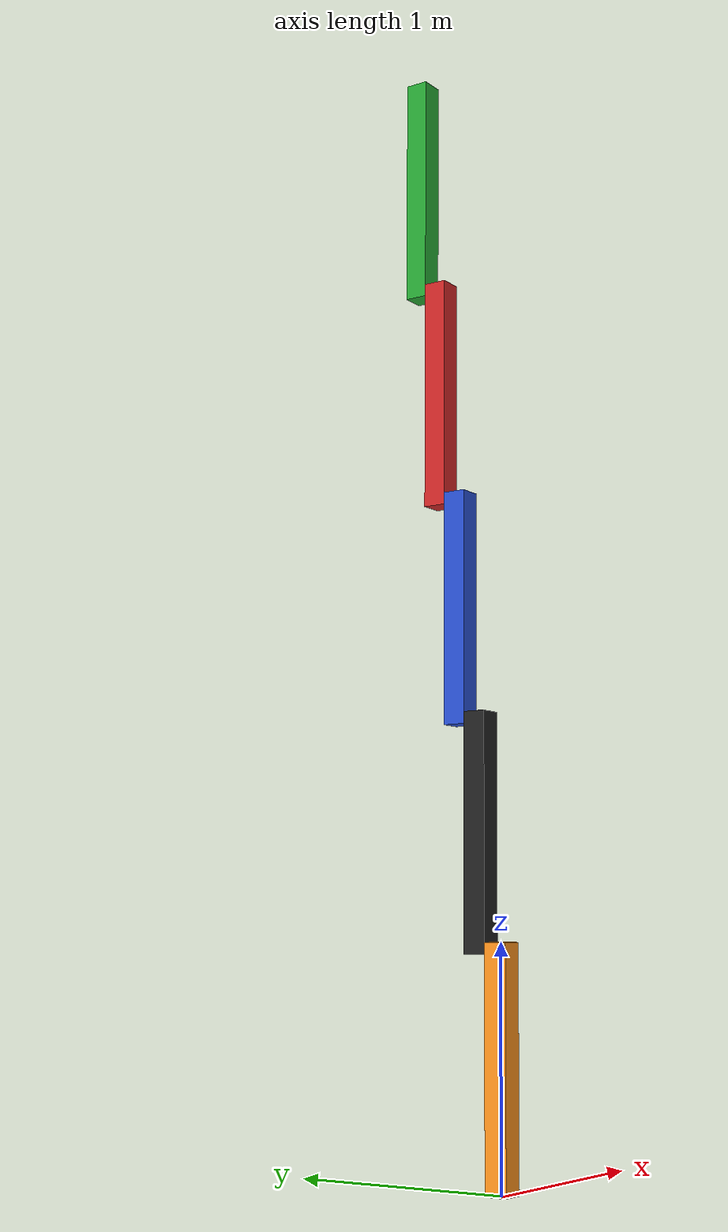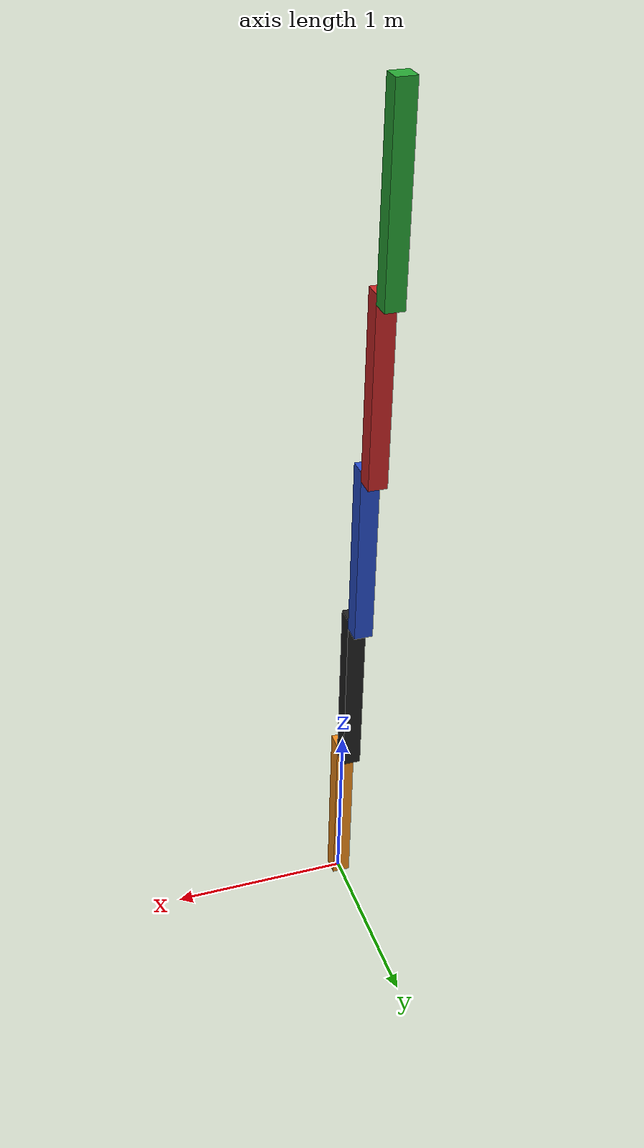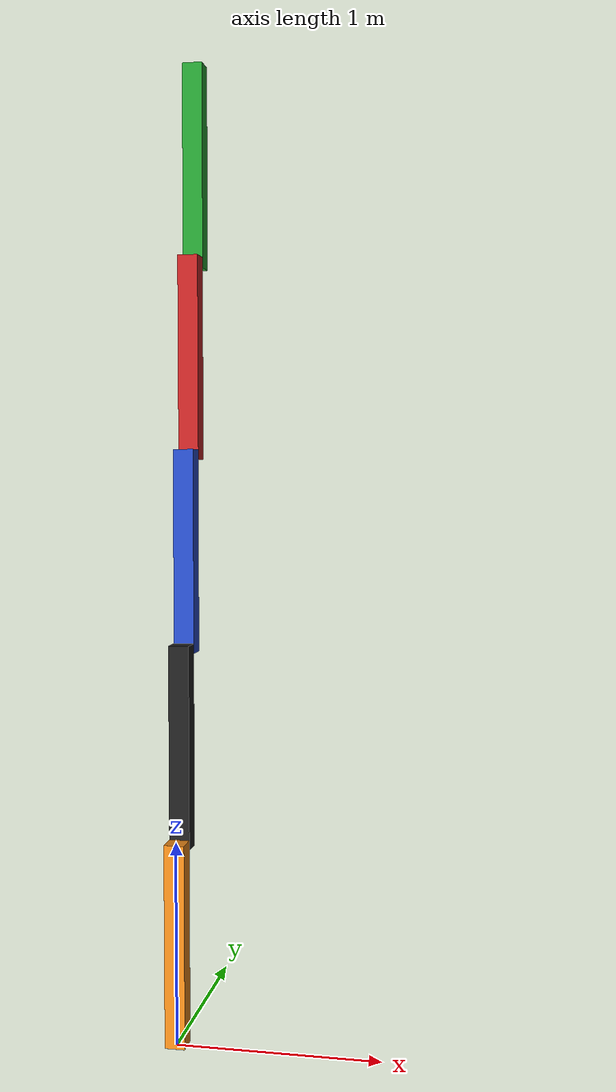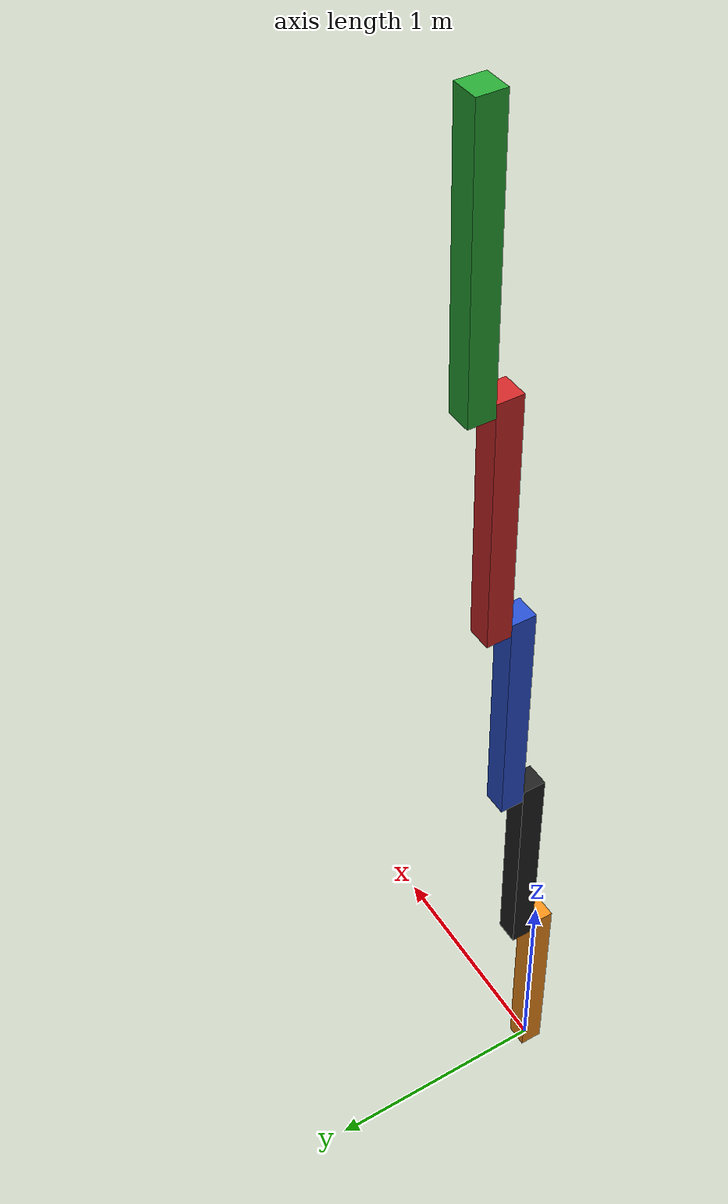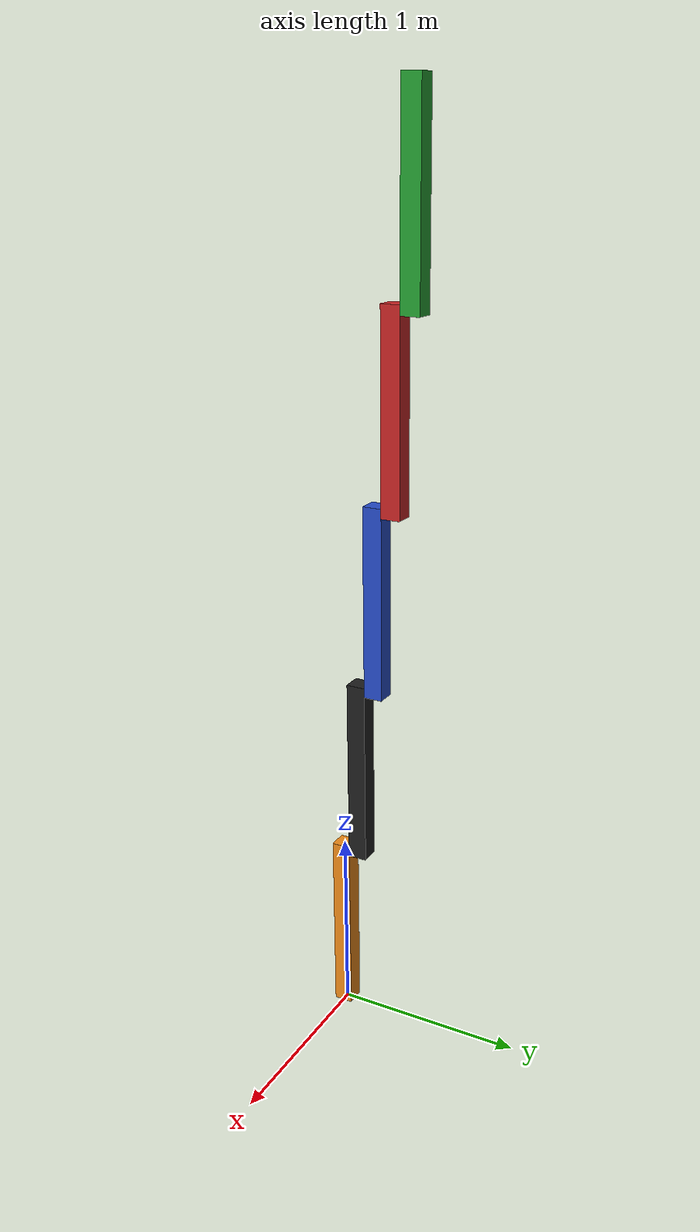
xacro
<?xml version="1.0" ?>
<!-- Lamp -->
<robot name="lamp" xmlns:xacro="http://www.ros.org/wiki/xacro">
<!-- Lamp has 5 joints and 5 links -->

  <!--  Constants for robot dimensions -->
  <xacro:property name="height1" value="1" /> <!-- Link 1 -->
  <xacro:property name="height2" value="1" /> <!-- Link 2 -->
  <xacro:property name="height3" value="1" /> <!-- Link 3-->
  <xacro:property name="height4" value="1" /> <!-- Link 4 -->
  <xacro:property name="height5" value="1" /> <!-- Link 5-->
  <xacro:property name="width" value="0.1" /> <!-- Square dimensions (widthxwidth) of beams -->
  <xacro:property name="gap_link" value="0.1" /> <!-- Distance gap between each axis -->
  <xacro:property name="mass" value="1" /> <!-- arbitrary value for mass -->
  <xacro:property name="axel_offset" value="0.05" /> <!-- Space btw top of beam and the each joint -->

  <!-- Import Rviz colors -->
  <xacro:include filename="$(find lamp_description)/urdf/materials.xacro" />

<!-- ***************** WORLD ********************* -->
<!-- Used for fixing the robot to Gazebo 'base_link' -->
<link name="world"/>

<joint name="fixed" type="fixed">
  <parent link="world"/>
	<child link="link1"/>
</joint>

<!-- Base Link -->
<link name="link1">
  <collision>
    <origin xyz="0 0 ${height1/2}" rpy="0 0 0"/>
    <geometry>
      <box size="${width} ${width} ${height1}"/>
    </geometry>
  </collision>

  <visual>
    <origin xyz="0 0 ${height1/2}" rpy="0 0 0"/>
    <geometry>
      <box size="${width} ${width} ${height1}"/>
    </geometry>
    <material name="orange"/>
  </visual>

  <inertial>
    <origin xyz="0 0 1" rpy="0 0 0"/>
    <mass value="1"/>
    <inertia
      ixx="${mass / 12.0 * (width*width + height1*height1)}" ixy="0.0" ixz="0.0"
      iyy="${mass / 12.0 * (height1*height1 + width*width)}" iyz="0.0"
      izz="${mass / 12.0 * (width*width + width*width)}"/>
  </inertial>
</link>

<!-- ***************** JOINT1 ********************* -->
<!-- Used for fixing link1 to link2  -->
<joint name="joint1" type="continuous">
  <parent link="link1"/>
	<child link="link2"/>
  <origin xyz="0 ${gap_link} ${height1 - axel_offset}" rpy="0 0 0"/>
  <axis xyz="0 1 0"/>
  <dynamics damping="0.7"/>
</joint>

<link name="link2">
  <collision>
    <origin xyz="0 0 ${height2/2}" rpy="0 0 0"/>
    <geometry>
      <box size="${width} ${width} ${height2}"/>
    </geometry>
  </collision>

  <visual>
    <origin xyz="0 0 ${height2/2}" rpy="0 0 0"/>
    <geometry>
      <box size="${width} ${width} ${height2}"/>
    </geometry>
    <material name="black"/>
 </visual>

  <inertial>
    <origin xyz="0 0 1" rpy="0 0 0"/>
    <mass value="1"/>
    <inertia
      ixx="${mass / 12.0 * (width*width + height2*height2)}" ixy="0.0" ixz="0.0"
      iyy="${mass / 12.0 * (height2*height2 + width*width)}" iyz="0.0"
      izz="${mass / 12.0 * (width*width + width*width)}"/>
  </inertial>
</link>

<!-- ***************** JOINT2 ********************* -->
<!-- Used for fixing link2 to link3  -->
<joint name="joint2" type="continuous">
  <parent link="link2"/>
	<child link="link3"/>
  <origin xyz="0 ${gap_link} ${height2 - axel_offset}" rpy="0 0 0"/>
  <axis xyz="0 1 0"/>
  <dynamics damping="0.7"/>
</joint>

<link name="link3">
  <collision>
    <origin xyz="0 0 ${height3/2}" rpy="0 0 0"/>
    <geometry>
      <box size="${width} ${width} ${height3}"/>
    </geometry>
  </collision>

  <visual>
    <origin xyz="0 0 ${height3/2}" rpy="0 0 0"/>
    <geometry>
      <box size="${width} ${width} ${height3}"/>
    </geometry>
    <material name="blue"/>
  </visual>

  <inertial>
    <origin xyz="0 0 1" rpy="0 0 0"/>
    <mass value="1"/>
    <inertia
      ixx="${mass / 12.0 * (width*width + height3*height3)}" ixy="0.0" ixz="0.0"
      iyy="${mass / 12.0 * (height3*height3 + width*width)}" iyz="0.0"
      izz="${mass / 12.0 * (width*width + width*width)}"/>
  </inertial>
</link>

<!-- ***************** JOINT3 ********************* -->
<!-- Used for fixing link3 to link4  -->
<joint name="joint3" type="continuous">
  <parent link="link3"/>
	<child link="link4"/>
  <origin xyz="0 ${gap_link} ${height3 - axel_offset}" rpy="0 0 0"/>
  <axis xyz="0 1 0"/>
  <dynamics damping="0.7"/>
</joint>

<link name="link4">
  <collision>
    <origin xyz="0 0 ${height4/2}" rpy="0 0 0"/>
    <geometry>
      <box size="${width} ${width} ${height4}"/>
    </geometry>
  </collision>

  <visual>
    <origin xyz="0 0 ${height4/2}" rpy="0 0 0"/>
    <geometry>
      <box size="${width} ${width} ${height4}"/>
    </geometry>
    <material name="red"/>
  </visual>

  <inertial>
    <origin xyz="0 0 1" rpy="0 0 0"/>
    <mass value="1"/>
    <inertia
      ixx="${mass / 12.0 * (width*width + height4*height4)}" ixy="0.0" ixz="0.0"
      iyy="${mass / 12.0 * (height4*height4 + width*width)}" iyz="0.0"
      izz="${mass / 12.0 * (width*width + width*width)}"/>
  </inertial>
</link>

<!-- ***************** JOINT4 ********************* -->
<!-- Used for fixing link4 to link5  -->
<joint name="joint4" type="continuous">
  <parent link="link4"/>
	<child link="link5"/>
  <origin xyz="0 ${gap_link} ${height4 - axel_offset}" rpy="0 0 0"/>
  <axis xyz="0 1 0"/>
  <dynamics damping="0.7"/>
</joint>

<link name="link5">
  <collision>
    <origin xyz="0 0 ${height5/2}" rpy="0 0 0"/>
    <geometry>
      <box size="${width} ${width} ${height5}"/>
    </geometry>
  </collision>

  <visual>
    <origin xyz="0 0 ${height5/2}" rpy="0 0 0"/>
    <geometry>
      <box size="${width} ${width} ${height5}"/>
    </geometry>
    <material name="green"/>
  </visual>

  <inertial>
    <origin xyz="0 0 1" rpy="0 0 0"/>
    <mass value="1"/>
    <inertia
      ixx="${mass / 12.0 * (width*width + height5*height5)}" ixy="0.0" ixz="0.0"
      iyy="${mass / 12.0 * (height5*height5 + width*width)}" iyz="0.0"
      izz="${mass / 12.0 * (width*width + width*width)}"/>
  </inertial>
</link>

</robot>
